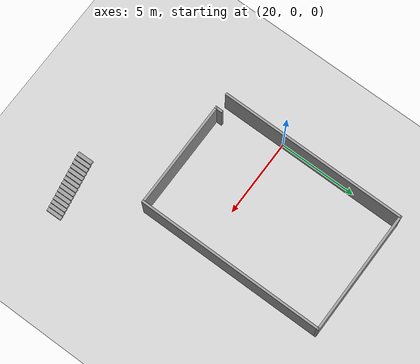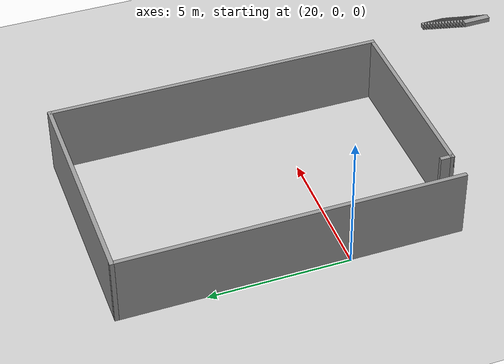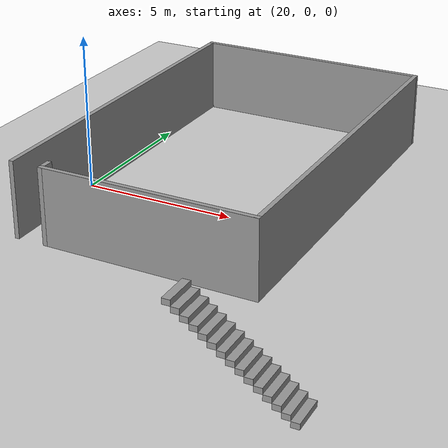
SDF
<sdf version="1.6">
 <world name="default">
  <model name="ground_plane">
   <static>1</static>
   <link name="link">
    <collision name="collision">
     <geometry><plane><normal>0 0 1</normal><size>100 100</size></plane></geometry>
     <surface><friction><ode><mu>100</mu><mu2>50</mu2></ode></friction></surface>
    </collision>
    <visual name="visual">
     <cast_shadows>0</cast_shadows>
     <geometry><plane><normal>0 0 1</normal><size>100 100</size></plane></geometry>
     <material>
      <script><uri>file://media/materials/scripts/gazebo.material</uri><name>Gazebo/Grey</name></script>
     </material>
    </visual>
   </link>
  </model>
  <model name="classrooms_0">
   <pose>24.0244 2.00671 0 0 -0 0</pose>
   <link name="Wall_39">
    <collision name="Wall_39_Collision">
     <geometry><box><size>12.192 0.15 2.5</size></box></geometry>
     <pose>0 0 1.25 0 -0 0</pose>
    </collision>
    <visual name="Wall_39_Visual">
     <pose>0 0 1.25 0 -0 0</pose>
     <geometry><box><size>12.192 0.15 2.5</size></box></geometry>
     <material>
      <script><uri>file://media/materials/scripts/gazebo.material</uri><name>Gazebo/Grey</name></script>
      <ambient>1 1 1 1</ambient>
     </material>
     <meta><layer>0</layer></meta>
    </visual>
    <pose>3.92486 -0.000205 0 0 -0 1.5708</pose>
   </link>
   <link name="Wall_40">
    <collision name="Wall_40_Collision">
     <geometry><box><size>7.99972 0.15 2.5</size></box></geometry>
     <pose>0 0 1.25 0 -0 0</pose>
    </collision>
    <visual name="Wall_40_Visual">
     <pose>0 0 1.25 0 -0 0</pose>
     <geometry><box><size>7.99972 0.15 2.5</size></box></geometry>
     <material>
      <script><uri>file://media/materials/scripts/gazebo.material</uri><name>Gazebo/Grey</name></script>
      <ambient>1 1 1 1</ambient>
     </material>
     <meta><layer>0</layer></meta>
    </visual>
    <pose>0 6.02093 0 0 -0 3.14156</pose>
   </link>
   <link name="Wall_41">
    <collision name="Wall_41_Collision">
     <geometry><box><size>12.1923 0.15 2.5</size></box></geometry>
     <pose>0 0 1.25 0 -0 0</pose>
    </collision>
    <visual name="Wall_41_Visual">
     <pose>0 0 1.25 0 -0 0</pose>
     <geometry><box><size>12.1923 0.15 2.5</size></box></geometry>
     <material>
      <script><uri>file://media/materials/scripts/gazebo.material</uri><name>Gazebo/Grey</name></script>
      <ambient>1 1 1 1</ambient>
     </material>
     <meta><layer>0</layer></meta>
    </visual>
    <pose>-3.92486 6.8e-05 0 0 -0 -1.5708</pose>
   </link>
   <link name="Wall_43">
    <collision name="Wall_43_Collision">
     <geometry><box><size>7 0.15 2.5</size></box></geometry>
     <pose>0 0 1.25 0 -0 0</pose>
    </collision>
    <visual name="Wall_43_Visual">
     <pose>0 0 1.25 0 -0 0</pose>
     <geometry><box><size>7 0.15 2.5</size></box></geometry>
     <material>
      <script><uri>file://media/materials/scripts/gazebo.material</uri><name>Gazebo/Grey</name></script>
      <ambient>1 1 1 1</ambient>
     </material>
     <meta><layer>0</layer></meta>
    </visual>
    <pose>0.49986 -6.02121 0 0 -0 3.14159</pose>
   </link>
   <link name="Wall_44">
    <collision name="Wall_44_Collision">
     <geometry><box><size>0.5 0.15 2.5</size></box></geometry>
     <pose>0 0 1.25 0 -0 0</pose>
    </collision>
    <visual name="Wall_44_Visual">
     <pose>0 0 1.25 0 -0 0</pose>
     <geometry><box><size>0.5 0.15 2.5</size></box></geometry>
     <material>
      <script><uri>file://media/materials/scripts/gazebo.material</uri><name>Gazebo/Grey</name></script>
      <ambient>1 1 1 1</ambient>
     </material>
     <meta><layer>0</layer></meta>
    </visual>
    <pose>-2.92514 -5.84621 0 0 -0 1.5708</pose>
   </link>
   <static>1</static>
  </model>
  <model name="Staircase_4">
   <link name="Stairs_0">
    <visual name="Stairs_0_Visual_2">
     <pose>-1.16667 -0 0.416667 0 -0 1.5708</pose>
     <geometry><box><size>1 0.233333 0.166667</size></box></geometry>
     <material>
      <script><uri>file://media/materials/scripts/gazebo.material</uri><name>Gazebo/Grey</name></script>
      <ambient>1 1 1 1</ambient>
      <shader type="pixel"/>
     </material>
     <meta><layer>0</layer></meta>
    </visual>
    <visual name="Stairs_0_Visual_3">
     <pose>-0.933333 -0 0.583333 0 -0 1.5708</pose>
     <geometry><box><size>1 0.233333 0.166667</size></box></geometry>
     <material>
      <script><uri>file://media/materials/scripts/gazebo.material</uri><name>Gazebo/Grey</name></script>
      <ambient>1 1 1 1</ambient>
      <shader type="pixel"/>
     </material>
     <meta><layer>0</layer></meta>
    </visual>
    <visual name="Stairs_0_Visual_4">
     <pose>-0.7 0 0.75 0 -0 1.5708</pose>
     <geometry><box><size>1 0.233333 0.166667</size></box></geometry>
     <material>
      <script><uri>file://media/materials/scripts/gazebo.material</uri><name>Gazebo/Grey</name></script>
      <ambient>1 1 1 1</ambient>
      <shader type="pixel"/>
     </material>
     <meta><layer>0</layer></meta>
    </visual>
    <visual name="Stairs_0_Visual_5">
     <pose>-0.466667 0 0.916667 0 -0 1.5708</pose>
     <geometry><box><size>1 0.233333 0.166667</size></box></geometry>
     <material>
      <script><uri>file://media/materials/scripts/gazebo.material</uri><name>Gazebo/Grey</name></script>
      <ambient>1 1 1 1</ambient>
      <shader type="pixel"/>
     </material>
     <meta><layer>0</layer></meta>
    </visual>
    <visual name="Stairs_0_Visual_6">
     <pose>-0.233333 0 1.08333 0 -0 1.5708</pose>
     <geometry><box><size>1 0.233333 0.166667</size></box></geometry>
     <material>
      <script><uri>file://media/materials/scripts/gazebo.material</uri><name>Gazebo/Grey</name></script>
      <ambient>1 1 1 1</ambient>
      <shader type="pixel"/>
     </material>
     <meta><layer>0</layer></meta>
    </visual>
    <visual name="Stairs_0_Visual_7">
     <pose>0 0 1.25 0 -0 1.5708</pose>
     <geometry><box><size>1 0.233333 0.166667</size></box></geometry>
     <material>
      <script><uri>file://media/materials/scripts/gazebo.material</uri><name>Gazebo/Grey</name></script>
      <ambient>1 1 1 1</ambient>
      <shader type="pixel"/>
     </material>
     <meta><layer>0</layer></meta>
    </visual>
    <visual name="Stairs_0_Visual_8">
     <pose>0.233333 0 1.41667 0 -0 1.5708</pose>
     <geometry><box><size>1 0.233333 0.166667</size></box></geometry>
     <material>
      <script><uri>file://media/materials/scripts/gazebo.material</uri><name>Gazebo/Grey</name></script>
      <ambient>1 1 1 1</ambient>
      <shader type="pixel"/>
     </material>
     <meta><layer>0</layer></meta>
    </visual>
    <visual name="Stairs_0_Visual_9">
     <pose>0.466667 0 1.58333 0 -0 1.5708</pose>
     <geometry><box><size>1 0.233333 0.166667</size></box></geometry>
     <material>
      <script><uri>file://media/materials/scripts/gazebo.material</uri><name>Gazebo/Grey</name></script>
      <ambient>1 1 1 1</ambient>
      <shader type="pixel"/>
     </material>
     <meta><layer>0</layer></meta>
    </visual>
    <visual name="Stairs_0_Visual_10">
     <pose>0.7 0 1.75 0 -0 1.5708</pose>
     <geometry><box><size>1 0.233333 0.166667</size></box></geometry>
     <material>
      <script><uri>file://media/materials/scripts/gazebo.material</uri><name>Gazebo/Grey</name></script>
      <ambient>1 1 1 1</ambient>
      <shader type="pixel"/>
     </material>
     <meta><layer>0</layer></meta>
    </visual>
    <visual name="Stairs_0_Visual_11">
     <pose>0.933334 0 1.91667 0 -0 1.5708</pose>
     <geometry><box><size>1 0.233333 0.166667</size></box></geometry>
     <material>
      <script><uri>file://media/materials/scripts/gazebo.material</uri><name>Gazebo/Grey</name></script>
      <ambient>1 1 1 1</ambient>
      <shader type="pixel"/>
     </material>
     <meta><layer>0</layer></meta>
    </visual>
    <visual name="Stairs_0_Visual_12">
     <pose>1.16667 0 2.08333 0 -0 1.5708</pose>
     <geometry><box><size>1 0.233333 0.166667</size></box></geometry>
     <material>
      <script><uri>file://media/materials/scripts/gazebo.material</uri><name>Gazebo/Grey</name></script>
      <ambient>1 1 1 1</ambient>
      <shader type="pixel"/>
     </material>
     <meta><layer>0</layer></meta>
    </visual>
    <visual name="Stairs_0_Visual_13">
     <pose>1.4 0 2.25 0 -0 1.5708</pose>
     <geometry><box><size>1 0.233333 0.166667</size></box></geometry>
     <material>
      <script><uri>file://media/materials/scripts/gazebo.material</uri><name>Gazebo/Grey</name></script>
      <ambient>1 1 1 1</ambient>
      <shader type="pixel"/>
     </material>
     <meta><layer>0</layer></meta>
    </visual>
    <visual name="Stairs_0_Visual_14">
     <pose>1.63333 0 2.41667 0 -0 1.5708</pose>
     <geometry><box><size>1 0.233333 0.166667</size></box></geometry>
     <material>
      <script><uri>file://media/materials/scripts/gazebo.material</uri><name>Gazebo/Grey</name></script>
      <ambient>1 1 1 1</ambient>
      <shader type="pixel"/>
     </material>
     <meta><layer>0</layer></meta>
    </visual>
    <visual name="Stairs_0_Visual_0">
     <pose>-1.63333 -0 0.083333 0 -0 1.5708</pose>
     <geometry><box><size>1 0.233333 0.166667</size></box></geometry>
     <material>
      <script><uri>file://media/materials/scripts/gazebo.material</uri><name>Gazebo/Grey</name></script>
      <ambient>1 1 1 1</ambient>
      <shader type="pixel"/>
     </material>
     <meta><layer>0</layer></meta>
    </visual>
    <visual name="Stairs_0_Visual_1">
     <pose>-1.4 -0 0.25 0 -0 1.5708</pose>
     <geometry><box><size>1 0.233333 0.166667</size></box></geometry>
     <material>
      <script><uri>file://media/materials/scripts/gazebo.material</uri><name>Gazebo/Grey</name></script>
      <ambient>1 1 1 1</ambient>
      <shader type="pixel"/>
     </material>
     <meta><layer>0</layer></meta>
    </visual>
    <collision name="Stairs_0_Collision_0">
     <pose>-1.63333 0 0.083333 0 -0 1.5708</pose>
     <geometry><box><size>1 0.233333 0.166667</size></box></geometry>
     <surface>
      <friction>
       <ode><mu>1</mu><mu2>1</mu2><fdir1>0 0 0</fdir1><slip1>0</slip1><slip2>0</slip2></ode>
       <torsional>
        <coefficient>1</coefficient>
        <patch_radius>0</patch_radius>
        <surface_radius>0</surface_radius>
        <use_patch_radius>1</use_patch_radius>
        <ode><slip>0</slip></ode>
       </torsional>
      </friction>
      <bounce><restitution_coefficient>0</restitution_coefficient><threshold>1e+06</threshold></bounce>
      <contact>
       <collide_without_contact>0</collide_without_contact>
       <collide_without_contact_bitmask>1</collide_without_contact_bitmask>
       <collide_bitmask>1</collide_bitmask>
       <ode>
        <soft_cfm>0</soft_cfm>
        <soft_erp>0.2</soft_erp>
        <kp>1e+13</kp>
        <kd>1</kd>
        <max_vel>0.01</max_vel>
        <min_depth>0</min_depth>
       </ode>
       <bullet>
        <split_impulse>1</split_impulse>
        <split_impulse_penetration_threshold>-0.01</split_impulse_penetration_threshold>
        <soft_cfm>0</soft_cfm>
        <soft_erp>0.2</soft_erp>
        <kp>1e+13</kp>
        <kd>1</kd>
       </bullet>
      </contact>
     </surface>
    </collision>
    <collision name="Stairs_0_Collision_1">
     <pose>-1.4 0 0.25 0 -0 1.5708</pose>
     <geometry><box><size>1 0.233333 0.166667</size></box></geometry>
     <surface>
      <friction>
       <ode><mu>1</mu><mu2>1</mu2><fdir1>0 0 0</fdir1><slip1>0</slip1><slip2>0</slip2></ode>
       <torsional>
        <coefficient>1</coefficient>
        <patch_radius>0</patch_radius>
        <surface_radius>0</surface_radius>
        <use_patch_radius>1</use_patch_radius>
        <ode><slip>0</slip></ode>
       </torsional>
      </friction>
      <bounce><restitution_coefficient>0</restitution_coefficient><threshold>1e+06</threshold></bounce>
      <contact>
       <collide_without_contact>0</collide_without_contact>
       <collide_without_contact_bitmask>1</collide_without_contact_bitmask>
       <collide_bitmask>1</collide_bitmask>
       <ode>
        <soft_cfm>0</soft_cfm>
        <soft_erp>0.2</soft_erp>
        <kp>1e+13</kp>
        <kd>1</kd>
        <max_vel>0.01</max_vel>
        <min_depth>0</min_depth>
       </ode>
       <bullet>
        <split_impulse>1</split_impulse>
        <split_impulse_penetration_threshold>-0.01</split_impulse_penetration_threshold>
        <soft_cfm>0</soft_cfm>
        <soft_erp>0.2</soft_erp>
        <kp>1e+13</kp>
        <kd>1</kd>
       </bullet>
      </contact>
     </surface>
    </collision>
    <collision name="Stairs_0_Collision_2">
     <pose>-1.16667 0 0.416667 0 -0 1.5708</pose>
     <geometry><box><size>1 0.233333 0.166667</size></box></geometry>
     <surface>
      <friction>
       <ode><mu>1</mu><mu2>1</mu2><fdir1>0 0 0</fdir1><slip1>0</slip1><slip2>0</slip2></ode>
       <torsional>
        <coefficient>1</coefficient>
        <patch_radius>0</patch_radius>
        <surface_radius>0</surface_radius>
        <use_patch_radius>1</use_patch_radius>
        <ode><slip>0</slip></ode>
       </torsional>
      </friction>
      <bounce><restitution_coefficient>0</restitution_coefficient><threshold>1e+06</threshold></bounce>
      <contact>
       <collide_without_contact>0</collide_without_contact>
       <collide_without_contact_bitmask>1</collide_without_contact_bitmask>
       <collide_bitmask>1</collide_bitmask>
       <ode>
        <soft_cfm>0</soft_cfm>
        <soft_erp>0.2</soft_erp>
        <kp>1e+13</kp>
        <kd>1</kd>
        <max_vel>0.01</max_vel>
        <min_depth>0</min_depth>
       </ode>
       <bullet>
        <split_impulse>1</split_impulse>
        <split_impulse_penetration_threshold>-0.01</split_impulse_penetration_threshold>
        <soft_cfm>0</soft_cfm>
        <soft_erp>0.2</soft_erp>
        <kp>1e+13</kp>
        <kd>1</kd>
       </bullet>
      </contact>
     </surface>
    </collision>
    <collision name="Stairs_0_Collision_3">
     <pose>-0.933333 0 0.583333 0 -0 1.5708</pose>
     <geometry><box><size>1 0.233333 0.166667</size></box></geometry>
     <surface>
      <friction>
       <ode><mu>1</mu><mu2>1</mu2><fdir1>0 0 0</fdir1><slip1>0</slip1><slip2>0</slip2></ode>
       <torsional>
        <coefficient>1</coefficient>
        <patch_radius>0</patch_radius>
        <surface_radius>0</surface_radius>
        <use_patch_radius>1</use_patch_radius>
        <ode><slip>0</slip></ode>
       </torsional>
      </friction>
      <bounce><restitution_coefficient>0</restitution_coefficient><threshold>1e+06</threshold></bounce>
      <contact>
       <collide_without_contact>0</collide_without_contact>
       <collide_without_contact_bitmask>1</collide_without_contact_bitmask>
       <collide_bitmask>1</collide_bitmask>
       <ode>
        <soft_cfm>0</soft_cfm>
        <soft_erp>0.2</soft_erp>
        <kp>1e+13</kp>
        <kd>1</kd>
        <max_vel>0.01</max_vel>
        <min_depth>0</min_depth>
       </ode>
       <bullet>
        <split_impulse>1</split_impulse>
        <split_impulse_penetration_threshold>-0.01</split_impulse_penetration_threshold>
        <soft_cfm>0</soft_cfm>
        <soft_erp>0.2</soft_erp>
        <kp>1e+13</kp>
        <kd>1</kd>
       </bullet>
      </contact>
     </surface>
    </collision>
    <collision name="Stairs_0_Collision_4">
     <pose>-0.7 0 0.75 0 -0 1.5708</pose>
     <geometry><box><size>1 0.233333 0.166667</size></box></geometry>
     <surface>
      <friction>
       <ode><mu>1</mu><mu2>1</mu2><fdir1>0 0 0</fdir1><slip1>0</slip1><slip2>0</slip2></ode>
       <torsional>
        <coefficient>1</coefficient>
        <patch_radius>0</patch_radius>
        <surface_radius>0</surface_radius>
        <use_patch_radius>1</use_patch_radius>
        <ode><slip>0</slip></ode>
       </torsional>
      </friction>
      <bounce><restitution_coefficient>0</restitution_coefficient><threshold>1e+06</threshold></bounce>
      <contact>
       <collide_without_contact>0</collide_without_contact>
       <collide_without_contact_bitmask>1</collide_without_contact_bitmask>
       <collide_bitmask>1</collide_bitmask>
       <ode>
        <soft_cfm>0</soft_cfm>
        <soft_erp>0.2</soft_erp>
        <kp>1e+13</kp>
        <kd>1</kd>
        <max_vel>0.01</max_vel>
        <min_depth>0</min_depth>
       </ode>
       <bullet>
        <split_impulse>1</split_impulse>
        <split_impulse_penetration_threshold>-0.01</split_impulse_penetration_threshold>
        <soft_cfm>0</soft_cfm>
        <soft_erp>0.2</soft_erp>
        <kp>1e+13</kp>
        <kd>1</kd>
       </bullet>
      </contact>
     </surface>
    </collision>
    <collision name="Stairs_0_Collision_5">
     <pose>-0.466667 0 0.916667 0 -0 1.5708</pose>
     <geometry><box><size>1 0.233333 0.166667</size></box></geometry>
     <surface>
      <friction>
       <ode><mu>1</mu><mu2>1</mu2><fdir1>0 0 0</fdir1><slip1>0</slip1><slip2>0</slip2></ode>
       <torsional>
        <coefficient>1</coefficient>
        <patch_radius>0</patch_radius>
        <surface_radius>0</surface_radius>
        <use_patch_radius>1</use_patch_radius>
        <ode><slip>0</slip></ode>
       </torsional>
      </friction>
      <bounce><restitution_coefficient>0</restitution_coefficient><threshold>1e+06</threshold></bounce>
      <contact>
       <collide_without_contact>0</collide_without_contact>
       <collide_without_contact_bitmask>1</collide_without_contact_bitmask>
       <collide_bitmask>1</collide_bitmask>
       <ode>
        <soft_cfm>0</soft_cfm>
        <soft_erp>0.2</soft_erp>
        <kp>1e+13</kp>
        <kd>1</kd>
        <max_vel>0.01</max_vel>
        <min_depth>0</min_depth>
       </ode>
       <bullet>
        <split_impulse>1</split_impulse>
        <split_impulse_penetration_threshold>-0.01</split_impulse_penetration_threshold>
        <soft_cfm>0</soft_cfm>
        <soft_erp>0.2</soft_erp>
        <kp>1e+13</kp>
        <kd>1</kd>
       </bullet>
      </contact>
     </surface>
    </collision>
    <collision name="Stairs_0_Collision_6">
     <pose>-0.233333 0 1.08333 0 -0 1.5708</pose>
     <geometry><box><size>1 0.233333 0.166667</size></box></geometry>
     <surface>
      <friction>
       <ode><mu>1</mu><mu2>1</mu2><fdir1>0 0 0</fdir1><slip1>0</slip1><slip2>0</slip2></ode>
       <torsional>
        <coefficient>1</coefficient>
        <patch_radius>0</patch_radius>
        <surface_radius>0</surface_radius>
        <use_patch_radius>1</use_patch_radius>
        <ode><slip>0</slip></ode>
       </torsional>
      </friction>
      <bounce><restitution_coefficient>0</restitution_coefficient><threshold>1e+06</threshold></bounce>
      <contact>
       <collide_without_contact>0</collide_without_contact>
       <collide_without_contact_bitmask>1</collide_without_contact_bitmask>
       <collide_bitmask>1</collide_bitmask>
       <ode>
        <soft_cfm>0</soft_cfm>
        <soft_erp>0.2</soft_erp>
        <kp>1e+13</kp>
        <kd>1</kd>
        <max_vel>0.01</max_vel>
        <min_depth>0</min_depth>
       </ode>
       <bullet>
        <split_impulse>1</split_impulse>
        <split_impulse_penetration_threshold>-0.01</split_impulse_penetration_threshold>
        <soft_cfm>0</soft_cfm>
        <soft_erp>0.2</soft_erp>
        <kp>1e+13</kp>
        <kd>1</kd>
       </bullet>
      </contact>
     </surface>
    </collision>
    <collision name="Stairs_0_Collision_7">
     <pose>0 0 1.25 0 -0 1.5708</pose>
     <geometry><box><size>1 0.233333 0.166667</size></box></geometry>
     <surface>
      <friction>
       <ode><mu>1</mu><mu2>1</mu2><fdir1>0 0 0</fdir1><slip1>0</slip1><slip2>0</slip2></ode>
       <torsional>
        <coefficient>1</coefficient>
        <patch_radius>0</patch_radius>
        <surface_radius>0</surface_radius>
        <use_patch_radius>1</use_patch_radius>
        <ode><slip>0</slip></ode>
       </torsional>
      </friction>
      <bounce><restitution_coefficient>0</restitution_coefficient><threshold>1e+06</threshold></bounce>
      <contact>
       <collide_without_contact>0</collide_without_contact>
       <collide_without_contact_bitmask>1</collide_without_contact_bitmask>
       <collide_bitmask>1</collide_bitmask>
       <ode>
        <soft_cfm>0</soft_cfm>
        <soft_erp>0.2</soft_erp>
        <kp>1e+13</kp>
        <kd>1</kd>
        <max_vel>0.01</max_vel>
        <min_depth>0</min_depth>
       </ode>
       <bullet>
        <split_impulse>1</split_impulse>
        <split_impulse_penetration_threshold>-0.01</split_impulse_penetration_threshold>
        <soft_cfm>0</soft_cfm>
        <soft_erp>0.2</soft_erp>
        <kp>1e+13</kp>
        <kd>1</kd>
       </bullet>
      </contact>
     </surface>
    </collision>
    <collision name="Stairs_0_Collision_8">
     <pose>0.233333 0 1.41667 0 -0 1.5708</pose>
     <geometry><box><size>1 0.233333 0.166667</size></box></geometry>
     <surface>
      <friction>
       <ode><mu>1</mu><mu2>1</mu2><fdir1>0 0 0</fdir1><slip1>0</slip1><slip2>0</slip2></ode>
       <torsional>
        <coefficient>1</coefficient>
        <patch_radius>0</patch_radius>
        <surface_radius>0</surface_radius>
        <use_patch_radius>1</use_patch_radius>
        <ode><slip>0</slip></ode>
       </torsional>
      </friction>
      <bounce><restitution_coefficient>0</restitution_coefficient><threshold>1e+06</threshold></bounce>
      <contact>
       <collide_without_contact>0</collide_without_contact>
       <collide_without_contact_bitmask>1</collide_without_contact_bitmask>
       <collide_bitmask>1</collide_bitmask>
       <ode>
        <soft_cfm>0</soft_cfm>
        <soft_erp>0.2</soft_erp>
        <kp>1e+13</kp>
        <kd>1</kd>
        <max_vel>0.01</max_vel>
        <min_depth>0</min_depth>
       </ode>
       <bullet>
        <split_impulse>1</split_impulse>
        <split_impulse_penetration_threshold>-0.01</split_impulse_penetration_threshold>
        <soft_cfm>0</soft_cfm>
        <soft_erp>0.2</soft_erp>
        <kp>1e+13</kp>
        <kd>1</kd>
       </bullet>
      </contact>
     </surface>
    </collision>
    <collision name="Stairs_0_Collision_9">
     <pose>0.466667 0 1.58333 0 -0 1.5708</pose>
     <geometry><box><size>1 0.233333 0.166667</size></box></geometry>
     <surface>
      <friction>
       <ode><mu>1</mu><mu2>1</mu2><fdir1>0 0 0</fdir1><slip1>0</slip1><slip2>0</slip2></ode>
       <torsional>
        <coefficient>1</coefficient>
        <patch_radius>0</patch_radius>
        <surface_radius>0</surface_radius>
        <use_patch_radius>1</use_patch_radius>
        <ode><slip>0</slip></ode>
       </torsional>
      </friction>
      <bounce><restitution_coefficient>0</restitution_coefficient><threshold>1e+06</threshold></bounce>
      <contact>
       <collide_without_contact>0</collide_without_contact>
       <collide_without_contact_bitmask>1</collide_without_contact_bitmask>
       <collide_bitmask>1</collide_bitmask>
       <ode>
        <soft_cfm>0</soft_cfm>
        <soft_erp>0.2</soft_erp>
        <kp>1e+13</kp>
        <kd>1</kd>
        <max_vel>0.01</max_vel>
        <min_depth>0</min_depth>
       </ode>
       <bullet>
        <split_impulse>1</split_impulse>
        <split_impulse_penetration_threshold>-0.01</split_impulse_penetration_threshold>
        <soft_cfm>0</soft_cfm>
        <soft_erp>0.2</soft_erp>
        <kp>1e+13</kp>
        <kd>1</kd>
       </bullet>
      </contact>
     </surface>
    </collision>
    <collision name="Stairs_0_Collision_10">
     <pose>0.7 0 1.75 0 -0 1.5708</pose>
     <geometry><box><size>1 0.233333 0.166667</size></box></geometry>
     <surface>
      <friction>
       <ode><mu>1</mu><mu2>1</mu2><fdir1>0 0 0</fdir1><slip1>0</slip1><slip2>0</slip2></ode>
       <torsional>
        <coefficient>1</coefficient>
        <patch_radius>0</patch_radius>
        <surface_radius>0</surface_radius>
        <use_patch_radius>1</use_patch_radius>
        <ode><slip>0</slip></ode>
       </torsional>
      </friction>
      <bounce><restitution_coefficient>0</restitution_coefficient><threshold>1e+06</threshold></bounce>
      <contact>
       <collide_without_contact>0</collide_without_contact>
       <collide_without_contact_bitmask>1</collide_without_contact_bitmask>
       <collide_bitmask>1</collide_bitmask>
       <ode>
        <soft_cfm>0</soft_cfm>
        <soft_erp>0.2</soft_erp>
        <kp>1e+13</kp>
        <kd>1</kd>
        <max_vel>0.01</max_vel>
        <min_depth>0</min_depth>
       </ode>
       <bullet>
        <split_impulse>1</split_impulse>
        <split_impulse_penetration_threshold>-0.01</split_impulse_penetration_threshold>
        <soft_cfm>0</soft_cfm>
        <soft_erp>0.2</soft_erp>
        <kp>1e+13</kp>
        <kd>1</kd>
       </bullet>
      </contact>
     </surface>
    </collision>
    <collision name="Stairs_0_Collision_11">
     <pose>0.933334 0 1.91667 0 -0 1.5708</pose>
     <geometry><box><size>1 0.233333 0.166667</size></box></geometry>
     <surface>
      <friction>
       <ode><mu>1</mu><mu2>1</mu2><fdir1>0 0 0</fdir1><slip1>0</slip1><slip2>0</slip2></ode>
       <torsional>
        <coefficient>1</coefficient>
        <patch_radius>0</patch_radius>
        <surface_radius>0</surface_radius>
        <use_patch_radius>1</use_patch_radius>
        <ode><slip>0</slip></ode>
       </torsional>
      </friction>
      <bounce><restitution_coefficient>0</restitution_coefficient><threshold>1e+06</threshold></bounce>
      <contact>
       <collide_without_contact>0</collide_without_contact>
       <collide_without_contact_bitmask>1</collide_without_contact_bitmask>
       <collide_bitmask>1</collide_bitmask>
       <ode>
        <soft_cfm>0</soft_cfm>
        <soft_erp>0.2</soft_erp>
        <kp>1e+13</kp>
        <kd>1</kd>
        <max_vel>0.01</max_vel>
        <min_depth>0</min_depth>
       </ode>
       <bullet>
        <split_impulse>1</split_impulse>
        <split_impulse_penetration_threshold>-0.01</split_impulse_penetration_threshold>
        <soft_cfm>0</soft_cfm>
        <soft_erp>0.2</soft_erp>
        <kp>1e+13</kp>
        <kd>1</kd>
       </bullet>
      </contact>
     </surface>
    </collision>
    <collision name="Stairs_0_Collision_12">
     <pose>1.16667 0 2.08333 0 -0 1.5708</pose>
     <geometry><box><size>1 0.233333 0.166667</size></box></geometry>
     <surface>
      <friction>
       <ode><mu>1</mu><mu2>1</mu2><fdir1>0 0 0</fdir1><slip1>0</slip1><slip2>0</slip2></ode>
       <torsional>
        <coefficient>1</coefficient>
        <patch_radius>0</patch_radius>
        <surface_radius>0</surface_radius>
        <use_patch_radius>1</use_patch_radius>
        <ode><slip>0</slip></ode>
       </torsional>
      </friction>
      <bounce><restitution_coefficient>0</restitution_coefficient><threshold>1e+06</threshold></bounce>
      <contact>
       <collide_without_contact>0</collide_without_contact>
       <collide_without_contact_bitmask>1</collide_without_contact_bitmask>
       <collide_bitmask>1</collide_bitmask>
       <ode>
        <soft_cfm>0</soft_cfm>
        <soft_erp>0.2</soft_erp>
        <kp>1e+13</kp>
        <kd>1</kd>
        <max_vel>0.01</max_vel>
        <min_depth>0</min_depth>
       </ode>
       <bullet>
        <split_impulse>1</split_impulse>
        <split_impulse_penetration_threshold>-0.01</split_impulse_penetration_threshold>
        <soft_cfm>0</soft_cfm>
        <soft_erp>0.2</soft_erp>
        <kp>1e+13</kp>
        <kd>1</kd>
       </bullet>
      </contact>
     </surface>
    </collision>
    <collision name="Stairs_0_Collision_13">
     <pose>1.4 0 2.25 0 -0 1.5708</pose>
     <geometry><box><size>1 0.233333 0.166667</size></box></geometry>
     <surface>
      <friction>
       <ode><mu>1</mu><mu2>1</mu2><fdir1>0 0 0</fdir1><slip1>0</slip1><slip2>0</slip2></ode>
       <torsional>
        <coefficient>1</coefficient>
        <patch_radius>0</patch_radius>
        <surface_radius>0</surface_radius>
        <use_patch_radius>1</use_patch_radius>
        <ode><slip>0</slip></ode>
       </torsional>
      </friction>
      <bounce><restitution_coefficient>0</restitution_coefficient><threshold>1e+06</threshold></bounce>
      <contact>
       <collide_without_contact>0</collide_without_contact>
       <collide_without_contact_bitmask>1</collide_without_contact_bitmask>
       <collide_bitmask>1</collide_bitmask>
       <ode>
        <soft_cfm>0</soft_cfm>
        <soft_erp>0.2</soft_erp>
        <kp>1e+13</kp>
        <kd>1</kd>
        <max_vel>0.01</max_vel>
        <min_depth>0</min_depth>
       </ode>
       <bullet>
        <split_impulse>1</split_impulse>
        <split_impulse_penetration_threshold>-0.01</split_impulse_penetration_threshold>
        <soft_cfm>0</soft_cfm>
        <soft_erp>0.2</soft_erp>
        <kp>1e+13</kp>
        <kd>1</kd>
       </bullet>
      </contact>
     </surface>
    </collision>
    <collision name="Stairs_0_Collision_14">
     <pose>1.63333 0 2.41667 0 -0 1.5708</pose>
     <geometry><box><size>1 0.233333 0.166667</size></box></geometry>
     <surface>
      <friction>
       <ode><mu>1</mu><mu2>1</mu2><fdir1>0 0 0</fdir1><slip1>0</slip1><slip2>0</slip2></ode>
       <torsional>
        <coefficient>1</coefficient>
        <patch_radius>0</patch_radius>
        <surface_radius>0</surface_radius>
        <use_patch_radius>1</use_patch_radius>
        <ode><slip>0</slip></ode>
       </torsional>
      </friction>
      <bounce><restitution_coefficient>0</restitution_coefficient><threshold>1e+06</threshold></bounce>
      <contact>
       <collide_without_contact>0</collide_without_contact>
       <collide_without_contact_bitmask>1</collide_without_contact_bitmask>
       <collide_bitmask>1</collide_bitmask>
       <ode>
        <soft_cfm>0</soft_cfm>
        <soft_erp>0.2</soft_erp>
        <kp>1e+13</kp>
        <kd>1</kd>
        <max_vel>0.01</max_vel>
        <min_depth>0</min_depth>
       </ode>
       <bullet>
        <split_impulse>1</split_impulse>
        <split_impulse_penetration_threshold>-0.01</split_impulse_penetration_threshold>
        <soft_cfm>0</soft_cfm>
        <soft_erp>0.2</soft_erp>
        <kp>1e+13</kp>
        <kd>1</kd>
       </bullet>
      </contact>
     </surface>
    </collision>
   </link>
   <static>1</static>
   <pose>29.5438 -8.15065 0 0 0 -3.12669</pose>
  </model>
 </world>
</sdf>
